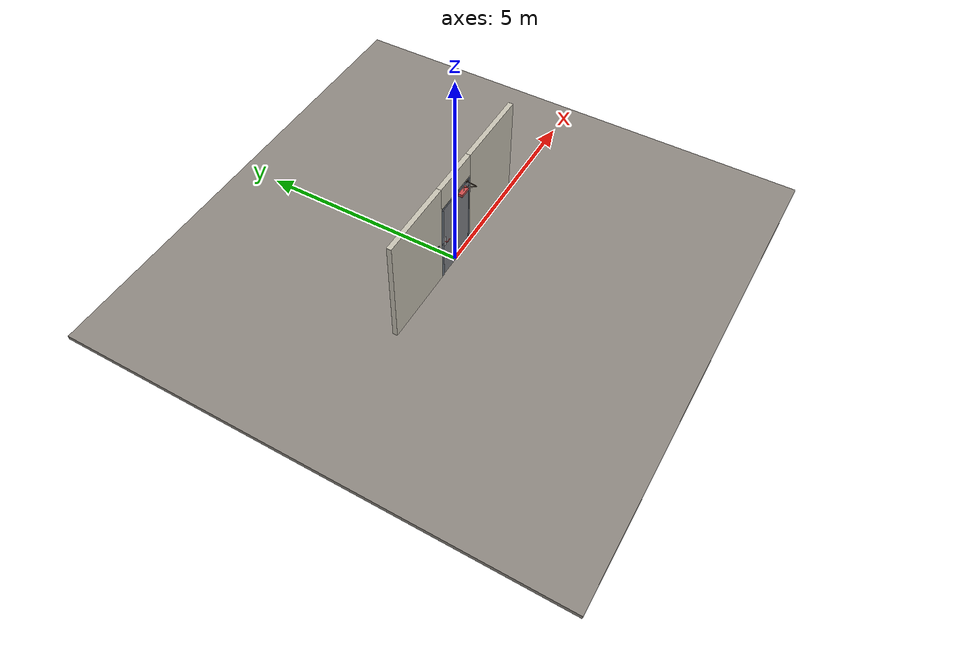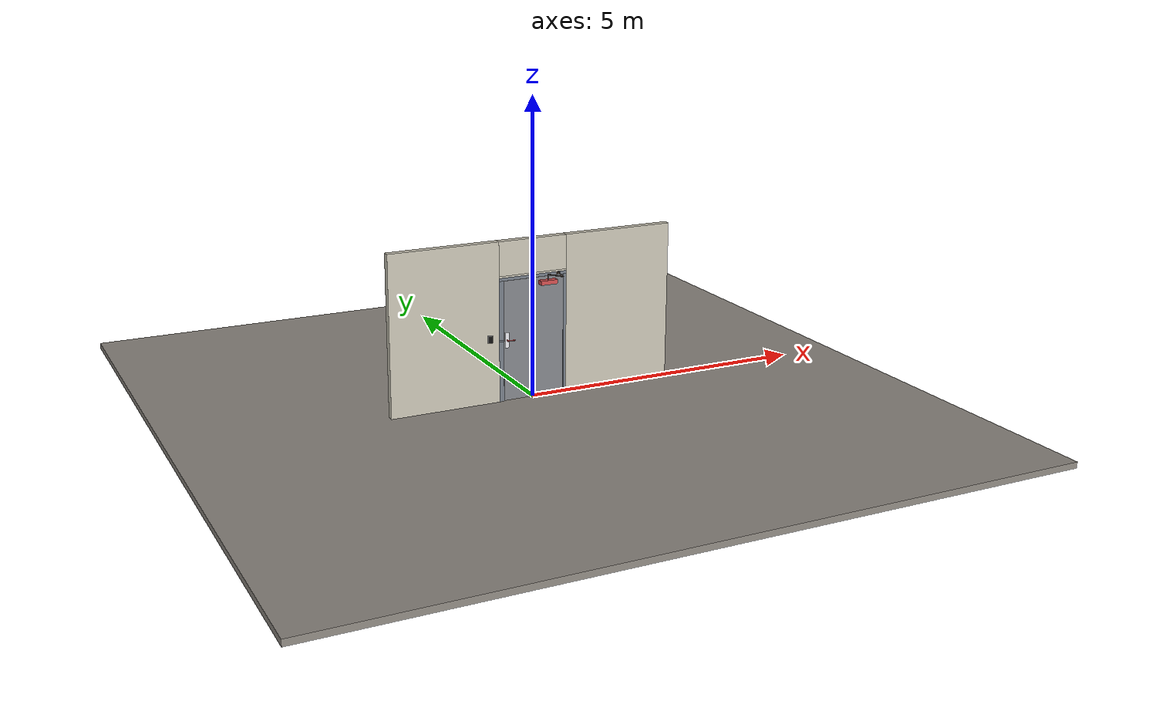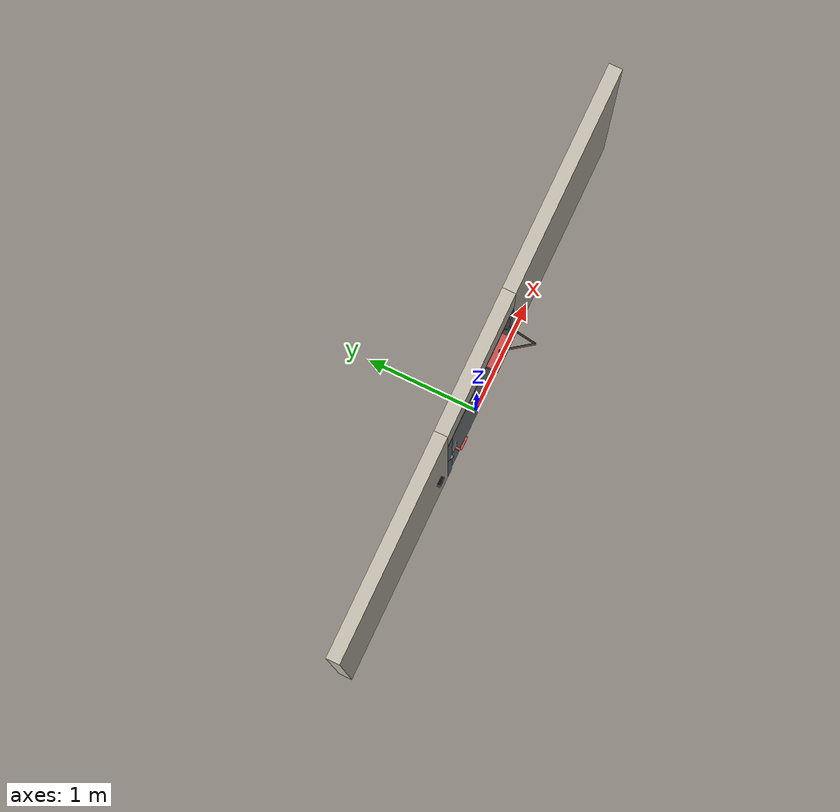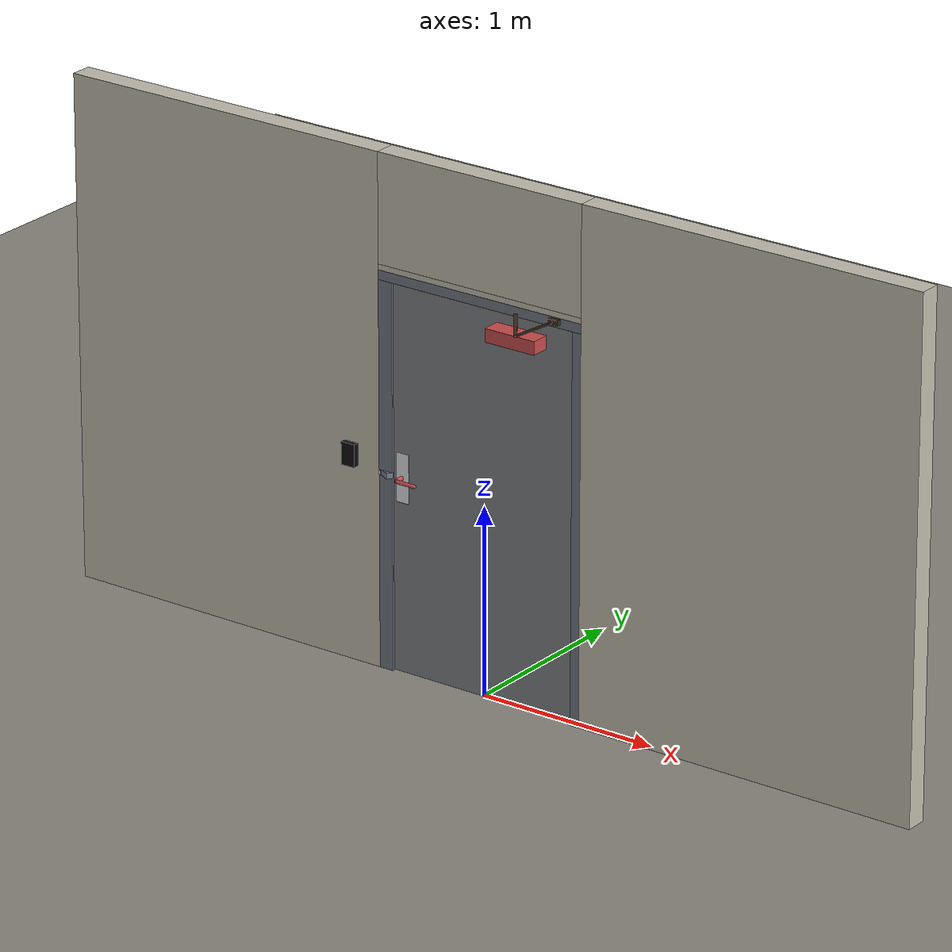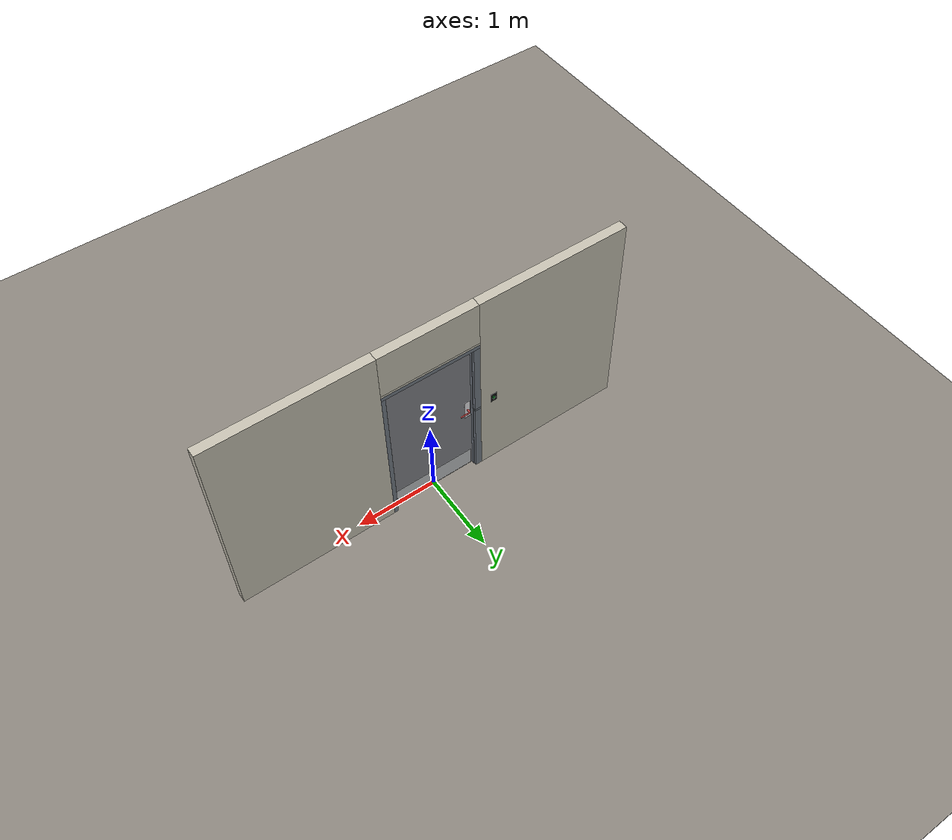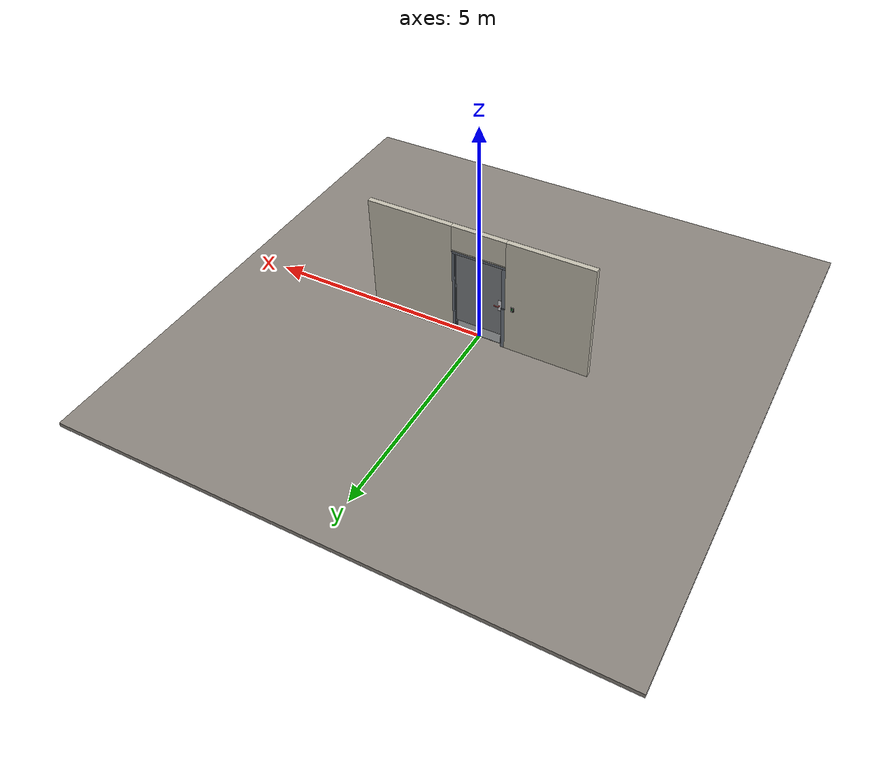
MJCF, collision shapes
<?xml version="1.0" ?>
<mujoco model="db0403_swing_single_full">
  <compiler angle="radian" meshdir="../../hardware" texturedir="../../textures" autolimits="true" inertiafromgeom="false"/>
  <option timestep="0.002" integrator="implicitfast" cone="elliptic" impratio="10" noslip_iterations="3">
    <flag multiccd="enable"/>
  </option>
  <size memory="16M"/>
  <default>
    <geom condim="4" solref="0.005 1" solimp="0.95 0.99 0.001"/>
    <joint solreflimit="0.005 1" solimplimit="0.95 0.99 0.001"/>
    <tendon solreflimit="0.005 1"/>
    <equality solref="0.002 1"/>
  </default>
  <visual>
    <headlight ambient="0.4 0.4 0.4" diffuse="0.7 0.7 0.7" specular="0.2 0.2 0.2"/>
    <quality shadowsize="4096"/>
    <map znear="0.01" zfar="60"/>
  </visual>
  <asset>
    <mesh name="card_reader_38c0bdb077" file="card_reader_38c0bdb077.obj"/>
    <mesh name="closer_body_fdc4667657" file="closer_body_fdc4667657.obj"/>
    <mesh name="hinge_e22b26c0c1" file="hinge_e22b26c0c1.obj"/>
    <mesh name="hinge_jamb_e1d088f8dc" file="hinge_jamb_e1d088f8dc.obj"/>
    <mesh name="lever_56c65af20a" file="lever_56c65af20a.obj"/>
    <material name="mat_floor" rgba="0.55 0.53 0.5 1" specular="0.2" shininess="0.15" reflectance="0"/>
    <material name="mat_wall" rgba="0.78 0.76 0.7 1" specular="0.2" shininess="0.1" reflectance="0"/>
    <material name="mat_leaf" rgba="0.5 0.51 0.53 1" specular="0.2" shininess="0.42" reflectance="0"/>
    <material name="mat_hinge" rgba="0.65 0.66 0.68 1" specular="0.74" shininess="0.5" reflectance="0.36"/>
    <material name="mat_op_chrome" rgba="0.9 0.9 0.92 1" specular="0.8" shininess="0.9" reflectance="0.4"/>
    <material name="mat_trim" rgba="0.85 0.66 0.3 1" specular="0.8" shininess="0.75" reflectance="0.4"/>
    <material name="mat_reader" rgba="0.05 0.05 0.05 1" specular="0.38" shininess="0.3" reflectance="0.12"/>
    <material name="mat_bolt" rgba="0.75 0.76 0.77 1" specular="0.8" shininess="0.65" reflectance="0.4"/>
    <material name="mat_frame" rgba="0.45 0.48 0.52 1" specular="0.32" shininess="0.6" reflectance="0.08"/>
    <material name="mat_seal" rgba="0.1 0.1 0.1 1" specular="0.2" shininess="0.1" reflectance="0"/>
    <material name="mat_closer" rgba="0.22 0.17 0.13 1" specular="0.8" shininess="0.6" reflectance="0.4"/>
    <material name="mat_kick" rgba="0.75 0.76 0.77 1" specular="0.8" shininess="0.65" reflectance="0.4"/>
    <material name="mat_wallreader" rgba="0.05 0.05 0.05 1" specular="0.38" shininess="0.3" reflectance="0.12"/>
    <material name="mat_rex" rgba="0.1 0.6 0.2 1" specular="0.2" shininess="0.6" reflectance="0"/>
    <texture name="skybox" type="skybox" builtin="gradient" rgb1="0.6 0.7 0.85" rgb2="0.9 0.92 0.95" width="256" height="256"/>
  </asset>
  <worldbody>
    <light name="sun" pos="1.5 -2.5 4" dir="-0.3 0.5 -0.8" directional="true" diffuse="0.8 0.8 0.8" specular="0.3 0.3 0.3" castshadow="true"/>
    <light name="fill" pos="-1.5 2.5 3" dir="0.3 -0.5 -0.7" directional="true" diffuse="0.35 0.35 0.4" castshadow="false"/>
    <camera name="robot_view" pos="0 -2.513687 1.734312" xyaxes="1 0 0 0 0.26963 0.962964" fovy="52"/>
    <camera name="far_view" pos="0 2.570688 1.734312" xyaxes="-1 0 0 0 -0.26963 0.962964" fovy="52"/>
    <camera name="iso" pos="-1.932062 -2.106937 2.141063" xyaxes="0.741536 -0.670913 0 0.242917 0.268487 0.932151" fovy="46"/>
    <camera name="detail_handle" pos="-0.202 -0.877 1.32" xyaxes="0.97561 0.219512 0 -0.070934 0.315262 0.94635" fovy="38"/>
    <geom name="floor" type="box" size="6 6 0.05" pos="0 0 -0.05" material="mat_floor" group="0" contype="1" conaffinity="1" friction="0.8 0.005 0.0001" density="2400"/>
    <geom name="wall_left" type="box" size="0.9415 0.0575 1.35" pos="-1.5585 0.0285 1.35" material="mat_wall" group="0" contype="1" conaffinity="1" friction="0.6 0.005 0.0001" density="800"/>
    <geom name="wall_right" type="box" size="0.9565 0.0575 1.35" pos="1.5435 0.0285 1.35" material="mat_wall" group="0" contype="1" conaffinity="1" friction="0.6 0.005 0.0001" density="800"/>
    <geom name="wall_header" type="box" size="0.602 0.0575 0.2875" pos="-0.015 0.0285 2.4125" material="mat_wall" group="0" contype="1" conaffinity="1" friction="0.6 0.005 0.0001" density="800"/>
    <geom name="hinge_0_jamb" type="mesh" mesh="hinge_jamb_e1d088f8dc" pos="0.534 -0.029 0.259" quat="0 0 1 0" material="mat_hinge" group="1" contype="0" conaffinity="0" density="7850"/>
    <geom name="hinge_1_jamb" type="mesh" mesh="hinge_jamb_e1d088f8dc" pos="0.534 -0.029 1.025" quat="0 0 1 0" material="mat_hinge" group="1" contype="0" conaffinity="0" density="7850"/>
    <geom name="hinge_2_jamb" type="mesh" mesh="hinge_jamb_e1d088f8dc" pos="0.534 -0.029 1.861" quat="0 0 1 0" material="mat_hinge" group="1" contype="0" conaffinity="0" density="7850"/>
    <geom name="jamb_hinge" type="box" size="0.025 0.0575 1.0225" pos="0.562 0.0285 1.0225" material="mat_frame" group="0" contype="1" conaffinity="1" friction="0.6 0.005 0.0001" density="300"/>
    <geom name="strike_1040_wall_n" type="box" size="0.04 0.03975 0.015" pos="-0.577 0.04625 1.04" material="mat_frame" group="0" contype="1" conaffinity="1" friction="0.6 0.005 0.0001" density="300"/>
    <geom name="strike_1040_wall_p" type="box" size="0.04 0.008 0.015" pos="-0.577 -0.0145 1.04" material="mat_frame" group="0" contype="1" conaffinity="1" friction="0.6 0.005 0.0001" density="300"/>
    <geom name="strike_1040_ramp" type="box" size="0.04 0.016771 0.015" pos="-0.580277 -0.019611 1.04" quat="0.973249 0 0 -0.229753" material="mat_frame" group="0" contype="1" conaffinity="1" friction="0.12 0.005 0.0001" density="300"/>
    <geom name="strike_1040_back" type="box" size="0.031 0.0065 0.015" pos="-0.586 0 1.04" material="mat_frame" group="0" contype="1" conaffinity="1" friction="0.6 0.005 0.0001" density="300"/>
    <geom name="jamb_strike_0" type="box" size="0.04 0.0575 0.5125" pos="-0.577 0.0285 0.5125" material="mat_frame" group="0" contype="1" conaffinity="1" friction="0.6 0.005 0.0001" density="300"/>
    <geom name="jamb_strike_1" type="box" size="0.04 0.0575 0.495" pos="-0.577 0.0285 1.55" material="mat_frame" group="0" contype="1" conaffinity="1" friction="0.6 0.005 0.0001" density="300"/>
    <geom name="jamb_head" type="box" size="0.602 0.0575 0.025" pos="-0.015 0.0285 2.07" material="mat_frame" group="0" contype="1" conaffinity="1" friction="0.6 0.005 0.0001" density="300"/>
    <geom name="head_stud" type="box" size="0.602 0.0575 0.015" pos="-0.015 0.0285 2.11" material="mat_wall" group="0" contype="1" conaffinity="1" friction="0.6 0.005 0.0001" density="500"/>
    <geom name="stop_hinge" type="box" size="0.0055 0.016 1.0225" pos="0.5315 0.0385 1.0225" material="mat_frame" group="0" contype="1" conaffinity="1" friction="0.6 0.005 0.0001" density="300"/>
    <geom name="stop_strike" type="box" size="0.0055 0.016 1.0225" pos="-0.5315 0.0385 1.0225" material="mat_frame" group="0" contype="1" conaffinity="1" friction="0.6 0.005 0.0001" density="300"/>
    <geom name="stop_head" type="box" size="0.537 0.016 0.0055" pos="0 0.0385 2.0395" material="mat_frame" group="0" contype="1" conaffinity="1" friction="0.6 0.005 0.0001" density="300"/>
    <geom name="seal_hinge" type="box" size="0.004 0.002 1.0225" pos="0.534 0.024 1.0225" material="mat_seal" group="1" contype="0" conaffinity="0" density="1100"/>
    <geom name="seal_strike" type="box" size="0.004 0.002 1.0225" pos="-0.534 0.024 1.0225" material="mat_seal" group="1" contype="0" conaffinity="0" density="1100"/>
    <geom name="seal_head" type="box" size="0.517 0.002 0.008" pos="0 0.024 2.033" material="mat_seal" group="1" contype="0" conaffinity="0" density="1100"/>
    <geom name="closer_bracket" type="box" size="0.03 0.012 0.014" pos="0.437 -0.041 2.075" material="mat_closer" group="1" contype="0" conaffinity="0" density="2700"/>
    <geom name="wall_reader" type="box" size="0.04 0.015 0.06" pos="-0.787 -0.044 1.1" material="mat_wallreader" group="0" contype="1" conaffinity="1" friction="0.6 0.005 0.0001" density="1000"/>
    <geom name="rex_plate" type="box" size="0.04 0.003 0.06" pos="-0.787 0.089 1.1" material="mat_wallreader" group="1" contype="0" conaffinity="0" density="1000"/>
    <site name="approach_point" pos="0 -1.5 0" quat="1 0 0 0" size="0.05" rgba="0.2 0.9 0.2 0.5" group="4"/>
    <site name="goal_point" pos="0 1.5 0" quat="1 0 0 0" size="0.05" rgba="0.2 0.9 0.2 0.5" group="4"/>
    <site name="door_plane_center" pos="0 0 1.0225" quat="1 0 0 0" size="0.02" rgba="0.2 0.9 0.2 0.5" group="4"/>
    <body name="rex_button" pos="-0.787 0.092 1.1">
      <inertial pos="0 0.004 0" mass="0.010053" quat="0 0 0.707107 -0.707107" diaginertia="0.000001059 0.000001059 0.000002011"/>
      <joint name="rex_button_slide" type="slide" axis="0 -1 0" limited="true" range="0 0.004" damping="1" stiffness="1500" springref="-0.004" armature="0.1"/>
      <geom name="rex_button_geom" type="cylinder" size="0.02 0.004" pos="0 0.004 0" quat="0.707107 -0.707107 0 0" material="mat_rex" group="0" contype="1" conaffinity="1" friction="0.6 0.005 0.0001" density="1000"/>
    </body>
    <body name="leaf" pos="0.537 0 0">
      <inertial pos="-0.496212 -0.011836 1.158576" mass="70.803963" quat="0.463799 0.486836 0.524382 -0.522403" diaginertia="6.252109618 30.864021501 37.007598384"/>
      <joint name="leaf_hinge" type="hinge" axis="0 0 1" pos="-0.003 -0.029 0" limited="true" range="0 1.745329" solreflimit="0.02 1" damping="12.475663" frictionloss="1.548225" stiffness="14.183889" springref="-2.144687" armature="0.02"/>
      <geom name="leaf_slab" type="box" size="0.5335 0.022 1.016" pos="-0.5365 0 1.025" material="mat_leaf" group="0" contype="1" conaffinity="1" friction="0.4 0.005 0.0001" density="1"/>
      <geom name="hinge_0" type="mesh" mesh="hinge_e22b26c0c1" pos="-0.003 -0.029 0.259" quat="0 0 1 0" material="mat_hinge" group="1" contype="0" conaffinity="0" density="7850"/>
      <geom name="hinge_1" type="mesh" mesh="hinge_e22b26c0c1" pos="-0.003 -0.029 1.025" quat="0 0 1 0" material="mat_hinge" group="1" contype="0" conaffinity="0" density="7850"/>
      <geom name="hinge_2" type="mesh" mesh="hinge_e22b26c0c1" pos="-0.003 -0.029 1.861" quat="0 0 1 0" material="mat_hinge" group="1" contype="0" conaffinity="0" density="7850"/>
      <geom name="leaf_handle_escutcheon_n" type="box" size="0.0375 0.0015 0.13" pos="-1.015 -0.0235 1.04" material="mat_op_chrome" group="1" contype="0" conaffinity="0" density="3000"/>
      <geom name="leaf_handle_escutcheon_p" type="box" size="0.0375 0.0015 0.13" pos="-1.015 0.0235 1.04" material="mat_op_chrome" group="1" contype="0" conaffinity="0" density="3000"/>
      <geom name="leaf_handle_reader" type="mesh" mesh="card_reader_38c0bdb077" pos="-1.015 0.022 1.2" quat="0 0 0.707107 0.707107" material="mat_reader" group="1" contype="0" conaffinity="0" density="2000"/>
      <geom name="leaf_latch_bolt_faceplate" type="box" size="0.0006 0.011 0.025" pos="-1.0694 0 1.04" material="mat_bolt" group="1" contype="0" conaffinity="0" density="8500"/>
      <geom name="closer_body" type="mesh" mesh="closer_body_fdc4667657" pos="-0.3 -0.022 1.952" quat="0 0 -0.707107 0.707107" material="mat_closer" group="1" contype="0" conaffinity="0" density="2000"/>
      <geom name="closer_body_col" type="box" size="0.145 0.05 0.035" pos="-0.3 -0.072 1.952" material="mat_closer" group="3" contype="1" conaffinity="1" rgba="0.8 0.3 0.3 0.25" friction="0.6 0.005 0.0001" density="2000"/>
      <geom name="closer_pinion_shaft" type="cylinder" size="0.008 0.0615" pos="-0.3 -0.072 2.0135" material="mat_closer" group="1" contype="0" conaffinity="0" density="2700"/>
      <geom name="kick_plate_p" type="box" size="0.5035 0.0008 0.125" pos="-0.5365 0.0228 0.144" material="mat_kick" group="2" contype="0" conaffinity="0" density="7900"/>
      <site name="leaf_edge_mid" pos="-1.07 0 1.016" quat="1 0 0 0" size="0.02" rgba="0.2 0.9 0.2 0.5" group="4"/>
      <body name="leaf_handle" pos="-1.015 0 1.04">
        <inertial pos="0.034904 0 0" mass="0.739068" quat="0.707107 0 0 -0.707107" diaginertia="0.001260094 0.003272501 0.004494637"/>
        <joint name="leaf_handle_hinge" type="hinge" axis="0 1 0" limited="true" range="0 0.87" damping="0.231314" frictionloss="0.06" stiffness="1.1" springref="-0.454545" armature="0.01"/>
        <geom name="leaf_handle_spindle" type="cylinder" size="0.006 0.034" pos="0 0 0" quat="0.707107 -0.707107 0 0" material="mat_op_chrome" group="1" contype="0" conaffinity="0" density="7850"/>
        <geom name="leaf_handle_lever_n" type="mesh" mesh="lever_56c65af20a" pos="0 -0.022 0" quat="0 0 -0.707107 0.707107" material="mat_op_chrome" group="1" contype="0" conaffinity="0" density="3000"/>
        <geom name="leaf_handle_lever_col_n" type="capsule" size="0.0095 0.0505" pos="0.06 -0.077 0" quat="0.707107 0 0.707107 0" material="mat_op_chrome" group="3" contype="1" conaffinity="1" rgba="0.8 0.3 0.3 0.25" friction="0.7 0.01 0.0001" density="3000"/>
        <geom name="leaf_handle_hub_col_n" type="cylinder" size="0.012 0.022" pos="0 -0.052 0" quat="0.707107 -0.707107 0 0" material="mat_op_chrome" group="3" contype="1" conaffinity="1" rgba="0.8 0.3 0.3 0.25" friction="0.6 0.005 0.0001" density="3000"/>
        <geom name="leaf_handle_lever_p" type="mesh" mesh="lever_56c65af20a" pos="0 0.022 0" quat="0 0 0.707107 0.707107" material="mat_op_chrome" group="1" contype="0" conaffinity="0" density="3000"/>
        <geom name="leaf_handle_lever_col_p" type="capsule" size="0.0095 0.0505" pos="0.06 0.077 0" quat="0.707107 0 0.707107 0" material="mat_op_chrome" group="3" contype="1" conaffinity="1" rgba="0.8 0.3 0.3 0.25" friction="0.7 0.01 0.0001" density="3000"/>
        <geom name="leaf_handle_hub_col_p" type="cylinder" size="0.012 0.022" pos="0 0.052 0" quat="0.707107 -0.707107 0 0" material="mat_op_chrome" group="3" contype="1" conaffinity="1" rgba="0.8 0.3 0.3 0.25" friction="0.6 0.005 0.0001" density="3000"/>
        <site name="leaf_handle_grip_n" pos="0.096 -0.077 0" quat="1 0 0 0" size="0.012" rgba="0.2 0.9 0.2 0.5" group="4"/>
        <site name="leaf_handle_grip_p" pos="0.096 0.077 0" quat="1 0 0 0" size="0.012" rgba="0.2 0.9 0.2 0.5" group="4"/>
      </body>
      <body name="leaf_latch_bolt" pos="-1.07 0 1.04">
        <inertial pos="0.008 0 0" mass="0.027149" quat="0 0 -0.707107 0.707107" diaginertia="0.000000328 0.000003943 0.000003943"/>
        <joint name="leaf_latch_bolt_slide" type="slide" axis="1 0 0" limited="true" range="0 0.014" damping="2" frictionloss="0.3" stiffness="400" springref="-0.01" armature="0.1"/>
        <geom name="leaf_latch_bolt_capsule" type="capsule" size="0.005 0.017" pos="0.008 0 0" quat="0.707107 0 -0.707107 0" material="mat_bolt" group="0" contype="1" conaffinity="1" friction="0.2 0.005 0.0001" density="8500"/>
      </body>
      <body name="closer_arm_main" pos="-0.3 -0.072 2.075" quat="0.890947 0 0 -0.454107">
        <inertial pos="0.14 0 0" mass="0.12096" quat="1 0 0 0" diaginertia="0.000003588 0.00079128 0.000792852"/>
        <joint name="closer_pinion" type="hinge" axis="0 0 1" limited="false" damping="0.01" armature="0.002"/>
        <geom name="closer_arm_main_geom" type="box" size="0.14 0.008 0.005" pos="0.14 0 0" material="mat_closer" group="1" contype="0" conaffinity="0" density="2700"/>
        <body name="closer_arm_fore" pos="0.28 0 0" quat="0.373215 0 0 0.927745">
          <inertial pos="0.128088 0 0" mass="0.076531" quat="1 0 0 0" diaginertia="0.000001771 0.000437665 0.000438201"/>
          <joint name="closer_elbow" type="hinge" axis="0 0 1" limited="false" damping="0.01" armature="0.002"/>
          <geom name="closer_arm_fore_geom" type="box" size="0.1125 0.007 0.004" pos="0.1125 0 0" material="mat_closer" group="1" contype="0" conaffinity="0" density="2700"/>
          <geom name="closer_fore_neck" type="box" size="0.0175 0.003 0.003" pos="0.2425 0 0" material="mat_closer" group="1" contype="0" conaffinity="0" density="2700"/>
          <geom name="closer_fore_pivot" type="cylinder" size="0.005 0.012" pos="0.26 0 0" material="mat_closer" group="1" contype="0" conaffinity="0" density="2700"/>
        </body>
      </body>
    </body>
  </worldbody>
  <tendon>
    <fixed name="leaf_latch_bolt_coupling" limited="true" range="0 10">
      <joint joint="leaf_latch_bolt_slide" coef="1"/>
      <joint joint="leaf_handle_hinge" coef="-0.017284"/>
    </fixed>
  </tendon>
  <equality>
    <connect name="closer_arm_connect" body1="closer_arm_fore" body2="world" anchor="0.26 0 0" active="true"/>
  </equality>
  <contact>
    <exclude body1="closer_arm_main" body2="leaf"/>
    <exclude body1="closer_arm_fore" body2="leaf"/>
    <exclude body1="closer_arm_main" body2="closer_arm_fore"/>
  </contact>
  <sensor>
    <jointpos name="leaf_hinge_pos" joint="leaf_hinge"/>
    <jointvel name="leaf_hinge_vel" joint="leaf_hinge"/>
    <jointpos name="leaf_handle_hinge_pos" joint="leaf_handle_hinge"/>
    <jointvel name="leaf_handle_hinge_vel" joint="leaf_handle_hinge"/>
    <jointpos name="leaf_latch_bolt_slide_pos" joint="leaf_latch_bolt_slide"/>
    <jointvel name="leaf_latch_bolt_slide_vel" joint="leaf_latch_bolt_slide"/>
    <jointpos name="rex_button_slide_pos" joint="rex_button_slide"/>
    <jointvel name="rex_button_slide_vel" joint="rex_button_slide"/>
  </sensor>
</mujoco>
